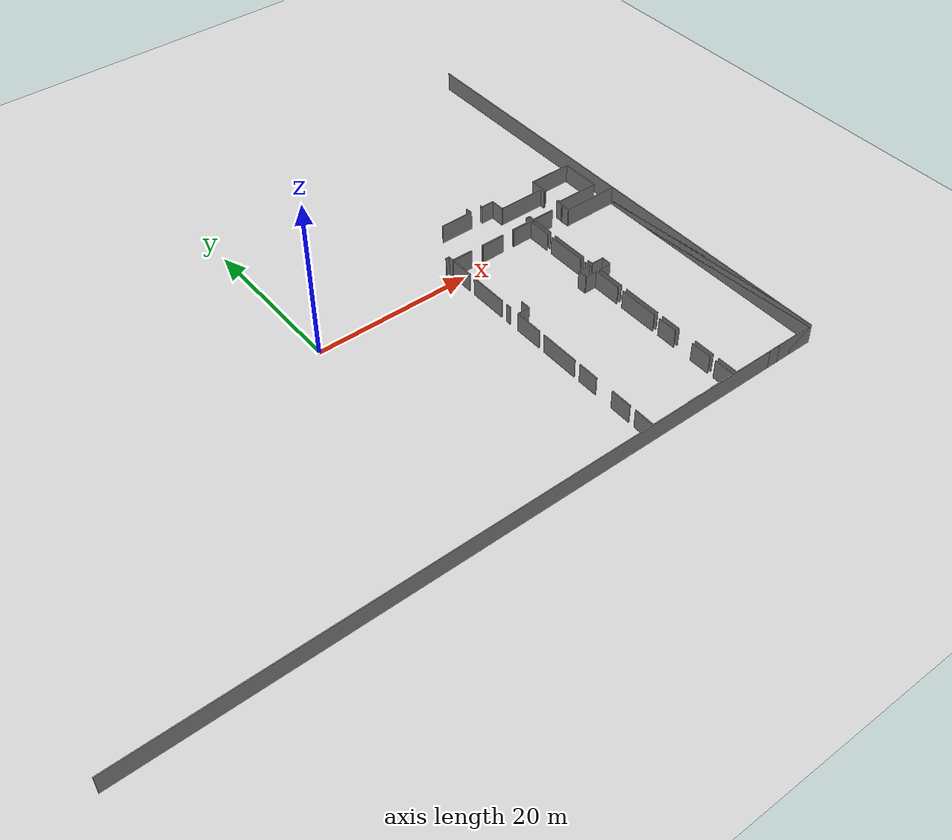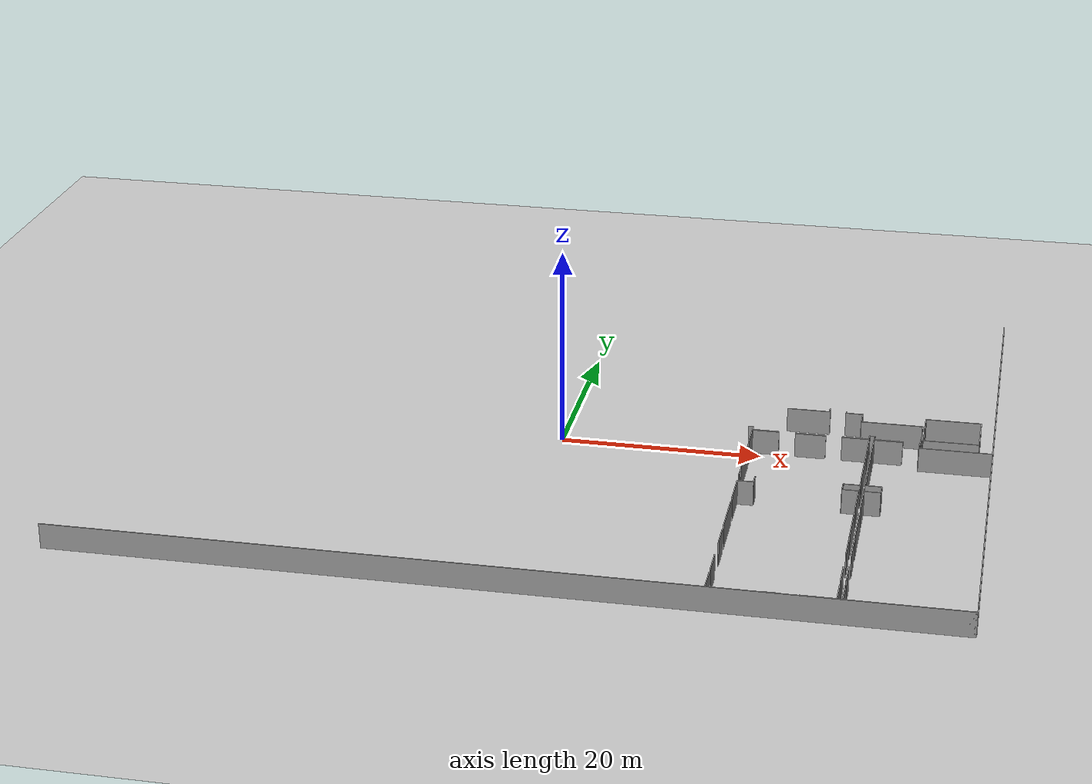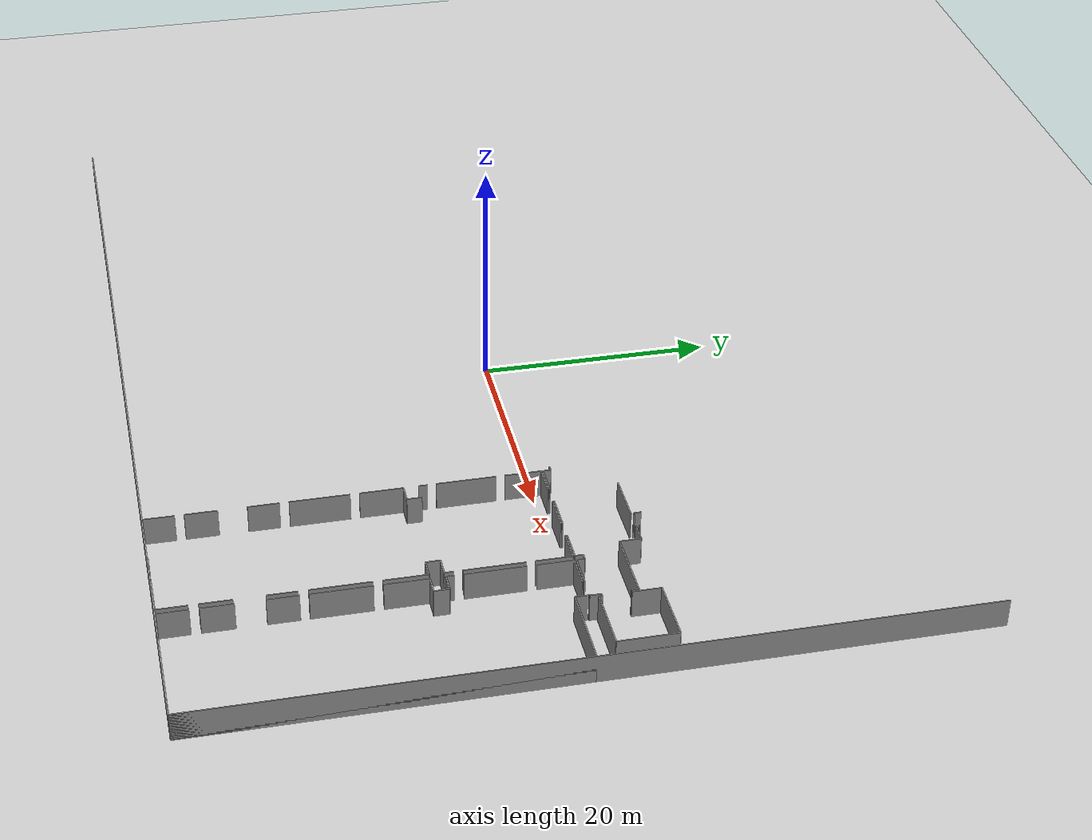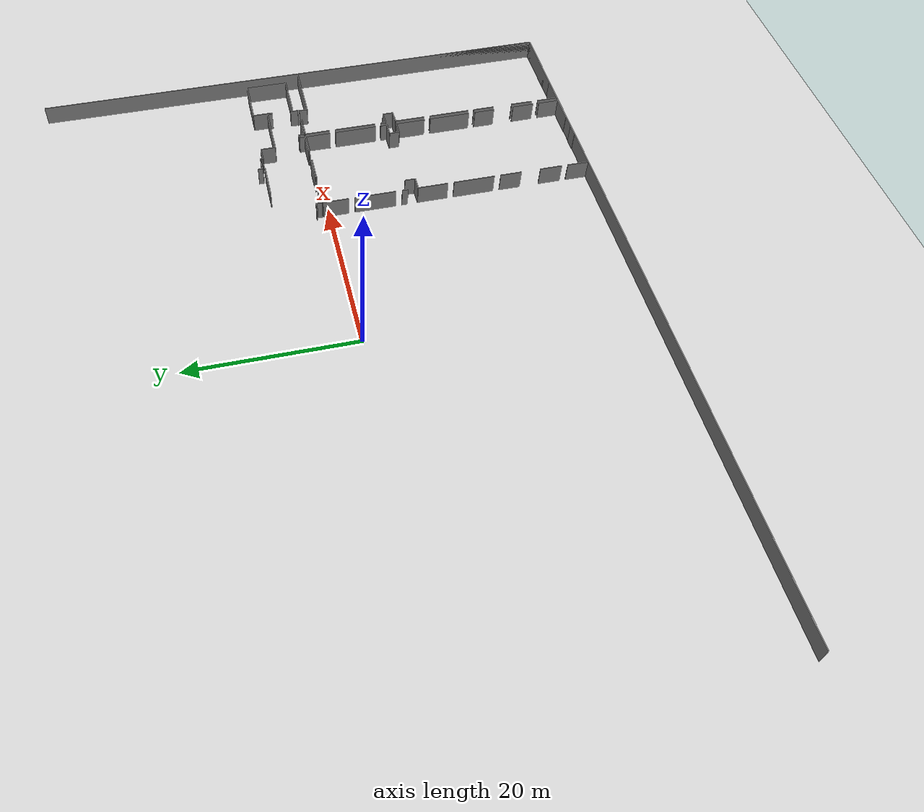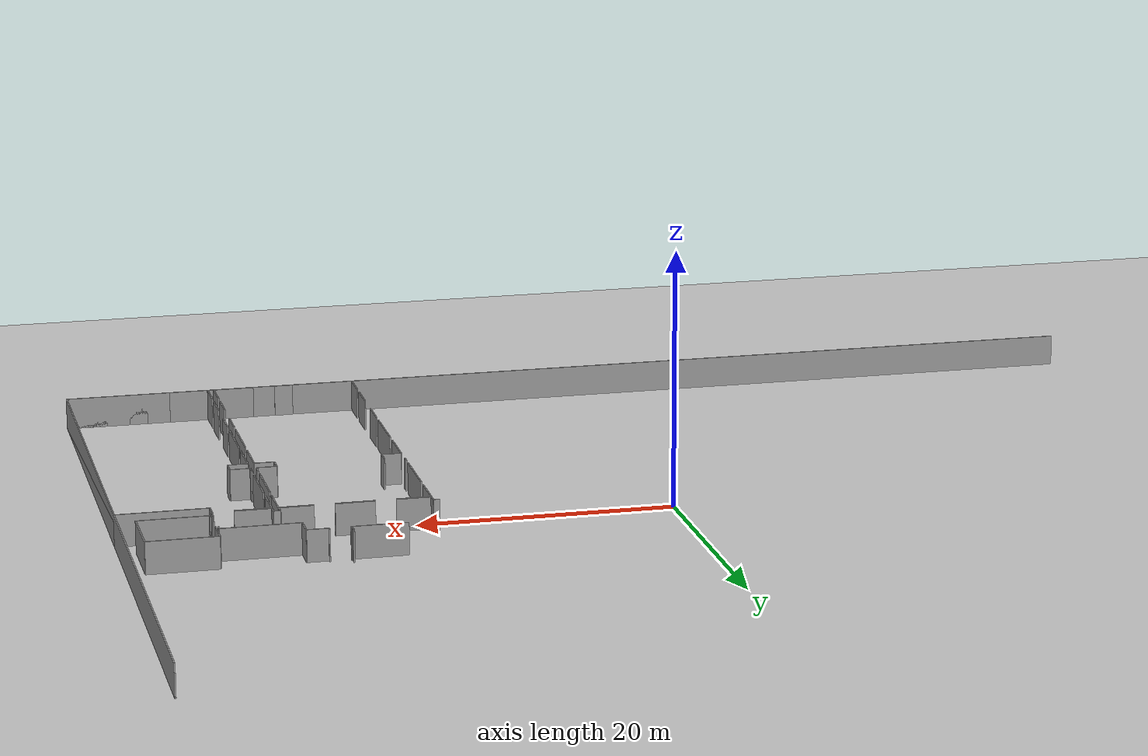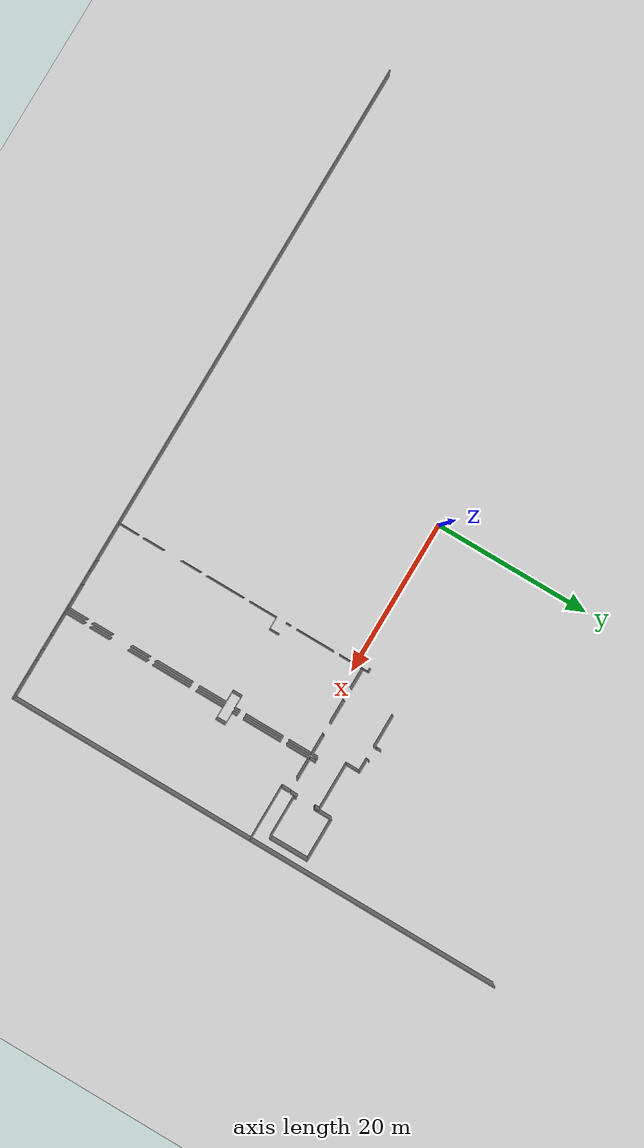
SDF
<sdf version="1.6">
 <world name="default">
  <model name="ground_plane">
   <static>1</static>
   <link name="link">
    <collision name="collision">
     <geometry><plane><normal>0 0 1</normal><size>100 100</size></plane></geometry>
     <surface><friction><ode><mu>100</mu><mu2>50</mu2></ode></friction></surface>
    </collision>
    <visual name="visual">
     <cast_shadows>0</cast_shadows>
     <geometry><plane><normal>0 0 1</normal><size>100 100</size></plane></geometry>
     <material>
      <script><uri>file://media/materials/scripts/gazebo.material</uri><name>Gazebo/Grey</name></script>
     </material>
    </visual>
   </link>
  </model>
  <model name="50052750">
   <static>1</static>
   <link name="Wall_202">
    <collision name="Wall_202_Collision">
     <geometry><box><size>0.096143954298 0.1 2.5</size></box></geometry>
     <pose>0.048071977149 0 1.25 0 0 0</pose>
    </collision>
    <visual name="Wall_202_Visual">
     <pose>0.048071977149 0 1.25 0 0 0</pose>
     <geometry><box><size>0.096143954298 0.1 2.5</size></box></geometry>
     <material>
      <script><uri>file://media/materials/scripts/gazebo.material</uri><name>Gazebo/Grey</name></script>
      <ambient>1 1 1 1</ambient>
     </material>
    </visual>
    <pose>70.3778825723 -25.6202682124 0 0 0 3.14159265359</pose>
   </link>
   <link name="Wall_203">
    <collision name="Wall_203_Collision">
     <geometry><box><size>0.105669445147 0.1 2.5</size></box></geometry>
     <pose>0.0528347225733 0 1.25 0 0 0</pose>
    </collision>
    <visual name="Wall_203_Visual">
     <pose>0.0528347225733 0 1.25 0 0 0</pose>
     <geometry><box><size>0.105669445147 0.1 2.5</size></box></geometry>
     <material>
      <script><uri>file://media/materials/scripts/gazebo.material</uri><name>Gazebo/Grey</name></script>
      <ambient>1 1 1 1</ambient>
     </material>
    </visual>
    <pose>68.7260354526 -25.6202682124 0 0 0 3.14159265359</pose>
   </link>
   <link name="Wall_204">
    <collision name="Wall_204_Collision">
     <geometry><box><size>0.585881190458 0.1 2.5</size></box></geometry>
     <pose>0.292940595229 0 1.25 0 0 0</pose>
    </collision>
    <visual name="Wall_204_Visual">
     <pose>0.292940595229 0 1.25 0 0 0</pose>
     <geometry><box><size>0.585881190458 0.1 2.5</size></box></geometry>
     <material>
      <script><uri>file://media/materials/scripts/gazebo.material</uri><name>Gazebo/Grey</name></script>
      <ambient>1 1 1 1</ambient>
     </material>
    </visual>
    <pose>68.6203660075 -25.6202682124 0 0 0 1.57079632679</pose>
   </link>
   <link name="Wall_240">
    <collision name="Wall_240_Collision">
     <geometry><box><size>4.31720646565 0.1 2.5</size></box></geometry>
     <pose>2.15860323282 0 1.25 0 0 0</pose>
    </collision>
    <visual name="Wall_240_Visual">
     <pose>2.15860323282 0 1.25 0 0 0</pose>
     <geometry><box><size>4.31720646565 0.1 2.5</size></box></geometry>
     <material>
      <script><uri>file://media/materials/scripts/gazebo.material</uri><name>Gazebo/Grey</name></script>
      <ambient>1 1 1 1</ambient>
     </material>
    </visual>
    <pose>64.3939692212 -25.8986665583 0 0 0 0.0</pose>
   </link>
   <link name="Wall_241">
    <collision name="Wall_241_Collision">
     <geometry><box><size>1.71128618258 0.1 2.5</size></box></geometry>
     <pose>0.855643091288 0 1.25 0 0 0</pose>
    </collision>
    <visual name="Wall_241_Visual">
     <pose>0.855643091288 0 1.25 0 0 0</pose>
     <geometry><box><size>1.71128618258 0.1 2.5</size></box></geometry>
     <material>
      <script><uri>file://media/materials/scripts/gazebo.material</uri><name>Gazebo/Grey</name></script>
      <ambient>1 1 1 1</ambient>
     </material>
    </visual>
    <pose>70.2680219112 -25.8986665583 0 0 0 0.0</pose>
   </link>
   <link name="Wall_242">
    <collision name="Wall_242_Collision">
     <geometry><box><size>1.77771060543 0.1 2.5</size></box></geometry>
     <pose>0.888855302714 0 1.25 0 0 0</pose>
    </collision>
    <visual name="Wall_242_Visual">
     <pose>0.888855302714 0 1.25 0 0 0</pose>
     <geometry><box><size>1.77771060543 0.1 2.5</size></box></geometry>
     <material>
      <script><uri>file://media/materials/scripts/gazebo.material</uri><name>Gazebo/Grey</name></script>
      <ambient>1 1 1 1</ambient>
     </material>
    </visual>
    <pose>71.9793080937 -25.8986665583 0 0 0 -1.57079632679</pose>
   </link>
   <link name="Wall_243">
    <collision name="Wall_243_Collision">
     <geometry><box><size>6.09097986819 0.1 2.5</size></box></geometry>
     <pose>3.0454899341 0 1.25 0 0 0</pose>
    </collision>
    <visual name="Wall_243_Visual">
     <pose>3.0454899341 0 1.25 0 0 0</pose>
     <geometry><box><size>6.09097986819 0.1 2.5</size></box></geometry>
     <material>
      <script><uri>file://media/materials/scripts/gazebo.material</uri><name>Gazebo/Grey</name></script>
      <ambient>1 1 1 1</ambient>
     </material>
    </visual>
    <pose>71.9793080937 -27.6763771637 0 0 0 0.0</pose>
   </link>
   <link name="Wall_244">
    <collision name="Wall_244_Collision">
     <geometry><box><size>0.594390628949 0.1 2.5</size></box></geometry>
     <pose>0.297195314475 0 1.25 0 0 0</pose>
    </collision>
    <visual name="Wall_244_Visual">
     <pose>0.297195314475 0 1.25 0 0 0</pose>
     <geometry><box><size>0.594390628949 0.1 2.5</size></box></geometry>
     <material>
      <script><uri>file://media/materials/scripts/gazebo.material</uri><name>Gazebo/Grey</name></script>
      <ambient>1 1 1 1</ambient>
     </material>
    </visual>
    <pose>78.0702879619 -27.6763771637 0 0 0 -1.57079632679</pose>
   </link>
   <link name="Wall_245">
    <collision name="Wall_245_Collision">
     <geometry><box><size>0.965884772042 0.1 2.5</size></box></geometry>
     <pose>0.482942386021 0 1.25 0 0 0</pose>
    </collision>
    <visual name="Wall_245_Visual">
     <pose>0.482942386021 0 1.25 0 0 0</pose>
     <geometry><box><size>0.965884772042 0.1 2.5</size></box></geometry>
     <material>
      <script><uri>file://media/materials/scripts/gazebo.material</uri><name>Gazebo/Grey</name></script>
      <ambient>1 1 1 1</ambient>
     </material>
    </visual>
    <pose>78.0702879619 -30.6239450519 0 0 0 -1.57079632679</pose>
   </link>
   <link name="Wall_246">
    <collision name="Wall_246_Collision">
     <geometry><box><size>0.0985570786463 0.1 2.5</size></box></geometry>
     <pose>0.0492785393231 0 1.25 0 0 0</pose>
    </collision>
    <visual name="Wall_246_Visual">
     <pose>0.0492785393231 0 1.25 0 0 0</pose>
     <geometry><box><size>0.0985570786463 0.1 2.5</size></box></geometry>
     <material>
      <script><uri>file://media/materials/scripts/gazebo.material</uri><name>Gazebo/Grey</name></script>
      <ambient>1 1 1 1</ambient>
     </material>
    </visual>
    <pose>78.0702879619 -31.5898298239 0 0 0 3.14159265359</pose>
   </link>
   <link name="Wall_247">
    <collision name="Wall_247_Collision">
     <geometry><box><size>2.83097588019 0.1 2.5</size></box></geometry>
     <pose>1.41548794009 0 1.25 0 0 0</pose>
    </collision>
    <visual name="Wall_247_Visual">
     <pose>1.41548794009 0 1.25 0 0 0</pose>
     <geometry><box><size>2.83097588019 0.1 2.5</size></box></geometry>
     <material>
      <script><uri>file://media/materials/scripts/gazebo.material</uri><name>Gazebo/Grey</name></script>
      <ambient>1 1 1 1</ambient>
     </material>
    </visual>
    <pose>76.4038350896 -31.5898298239 0 0 0 3.14159265359</pose>
   </link>
   <link name="Wall_248">
    <collision name="Wall_248_Collision">
     <geometry><box><size>0.69142362906 0.1 2.5</size></box></geometry>
     <pose>0.34571181453 0 1.25 0 0 0</pose>
    </collision>
    <visual name="Wall_248_Visual">
     <pose>0.34571181453 0 1.25 0 0 0</pose>
     <geometry><box><size>0.69142362906 0.1 2.5</size></box></geometry>
     <material>
      <script><uri>file://media/materials/scripts/gazebo.material</uri><name>Gazebo/Grey</name></script>
      <ambient>1 1 1 1</ambient>
     </material>
    </visual>
    <pose>73.5728592094 -31.5898298239 0 0 0 1.57079632679</pose>
   </link>
   <link name="Wall_249">
    <collision name="Wall_249_Collision">
     <geometry><box><size>0.50751815241 0.1 2.5</size></box></geometry>
     <pose>0.253759076205 0 1.25 0 0 0</pose>
    </collision>
    <visual name="Wall_249_Visual">
     <pose>0.253759076205 0 1.25 0 0 0</pose>
     <geometry><box><size>0.50751815241 0.1 2.5</size></box></geometry>
     <material>
      <script><uri>file://media/materials/scripts/gazebo.material</uri><name>Gazebo/Grey</name></script>
      <ambient>1 1 1 1</ambient>
     </material>
    </visual>
    <pose>73.5728592094 -30.8984061949 0 0 0 3.14159265359</pose>
   </link>
   <link name="Wall_250">
    <collision name="Wall_250_Collision">
     <geometry><box><size>0.694598792676 0.1 2.5</size></box></geometry>
     <pose>0.347299396338 0 1.25 0 0 0</pose>
    </collision>
    <visual name="Wall_250_Visual">
     <pose>0.347299396338 0 1.25 0 0 0</pose>
     <geometry><box><size>0.694598792676 0.1 2.5</size></box></geometry>
     <material>
      <script><uri>file://media/materials/scripts/gazebo.material</uri><name>Gazebo/Grey</name></script>
      <ambient>1 1 1 1</ambient>
     </material>
    </visual>
    <pose>73.065341057 -30.8984061949 0 0 0 -1.57079632679</pose>
   </link>
   <link name="Wall_251">
    <collision name="Wall_251_Collision">
     <geometry><box><size>2.63945001086 0.1 2.5</size></box></geometry>
     <pose>1.31972500543 0 1.25 0 0 0</pose>
    </collision>
    <visual name="Wall_251_Visual">
     <pose>1.31972500543 0 1.25 0 0 0</pose>
     <geometry><box><size>2.63945001086 0.1 2.5</size></box></geometry>
     <material>
      <script><uri>file://media/materials/scripts/gazebo.material</uri><name>Gazebo/Grey</name></script>
      <ambient>1 1 1 1</ambient>
     </material>
    </visual>
    <pose>73.065341057 -31.5930049875 0 0 0 3.14159265359</pose>
   </link>
   <link name="Wall_252">
    <collision name="Wall_252_Collision">
     <geometry><box><size>3.03977463959 0.1 2.5</size></box></geometry>
     <pose>1.51988731979 0 1.25 0 0 0</pose>
    </collision>
    <visual name="Wall_252_Visual">
     <pose>1.51988731979 0 1.25 0 0 0</pose>
     <geometry><box><size>3.03977463959 0.1 2.5</size></box></geometry>
     <material>
      <script><uri>file://media/materials/scripts/gazebo.material</uri><name>Gazebo/Grey</name></script>
      <ambient>1 1 1 1</ambient>
     </material>
    </visual>
    <pose>68.8463106504 -31.5930049875 0 0 0 3.14159265359</pose>
   </link>
   <link name="Wall_253">
    <collision name="Wall_253_Collision">
     <geometry><box><size>2.66307322816 0.1 2.5</size></box></geometry>
     <pose>1.33153661408 0 1.25 0 0 0</pose>
    </collision>
    <visual name="Wall_253_Visual">
     <pose>1.33153661408 0 1.25 0 0 0</pose>
     <geometry><box><size>2.66307322816 0.1 2.5</size></box></geometry>
     <material>
      <script><uri>file://media/materials/scripts/gazebo.material</uri><name>Gazebo/Grey</name></script>
      <ambient>1 1 1 1</ambient>
     </material>
    </visual>
    <pose>64.2292417328 -31.5930049875 0 0 0 3.14159265359</pose>
   </link>
   <link name="Wall_254">
    <collision name="Wall_254_Collision">
     <geometry><box><size>0.685073301827 0.1 2.5</size></box></geometry>
     <pose>0.342536650914 0 1.25 0 0 0</pose>
    </collision>
    <visual name="Wall_254_Visual">
     <pose>0.342536650914 0 1.25 0 0 0</pose>
     <geometry><box><size>0.685073301827 0.1 2.5</size></box></geometry>
     <material>
      <script><uri>file://media/materials/scripts/gazebo.material</uri><name>Gazebo/Grey</name></script>
      <ambient>1 1 1 1</ambient>
     </material>
    </visual>
    <pose>61.5661685047 -31.5930049875 0 0 0 1.57079632679</pose>
   </link>
   <link name="Wall_255">
    <collision name="Wall_255_Collision">
     <geometry><box><size>0.488721183803 0.1 2.5</size></box></geometry>
     <pose>0.244360591901 0 1.25 0 0 0</pose>
    </collision>
    <visual name="Wall_255_Visual">
     <pose>0.244360591901 0 1.25 0 0 0</pose>
     <geometry><box><size>0.488721183803 0.1 2.5</size></box></geometry>
     <material>
      <script><uri>file://media/materials/scripts/gazebo.material</uri><name>Gazebo/Grey</name></script>
      <ambient>1 1 1 1</ambient>
     </material>
    </visual>
    <pose>61.5661685047 -30.9079316857 0 0 0 3.14159265359</pose>
   </link>
   <link name="Wall_511">
    <collision name="Wall_511_Collision">
     <geometry><box><size>1.48597657237 0.1 2.5</size></box></geometry>
     <pose>0.742988286186 0 1.25 0 0 0</pose>
    </collision>
    <visual name="Wall_511_Visual">
     <pose>0.742988286186 0 1.25 0 0 0</pose>
     <geometry><box><size>1.48597657237 0.1 2.5</size></box></geometry>
     <material>
      <script><uri>file://media/materials/scripts/gazebo.material</uri><name>Gazebo/Grey</name></script>
      <ambient>1 1 1 1</ambient>
     </material>
    </visual>
    <pose>66.5514293952 -64.6136905435 0 0 0 0.0</pose>
   </link>
   <link name="Wall_512">
    <collision name="Wall_512_Collision">
     <geometry><box><size>3.25136754297 0.1 2.5</size></box></geometry>
     <pose>1.62568377148 0 1.25 0 0 0</pose>
    </collision>
    <visual name="Wall_512_Visual">
     <pose>1.62568377148 0 1.25 0 0 0</pose>
     <geometry><box><size>3.25136754297 0.1 2.5</size></box></geometry>
     <material>
      <script><uri>file://media/materials/scripts/gazebo.material</uri><name>Gazebo/Grey</name></script>
      <ambient>1 1 1 1</ambient>
     </material>
    </visual>
    <pose>69.8154975926 -64.6136905435 0 0 0 0.0</pose>
   </link>
   <link name="Wall_513">
    <collision name="Wall_513_Collision">
     <geometry><box><size>2.55727677647 0.1 2.5</size></box></geometry>
     <pose>1.27863838824 0 1.25 0 0 0</pose>
    </collision>
    <visual name="Wall_513_Visual">
     <pose>1.27863838824 0 1.25 0 0 0</pose>
     <geometry><box><size>2.55727677647 0.1 2.5</size></box></geometry>
     <material>
      <script><uri>file://media/materials/scripts/gazebo.material</uri><name>Gazebo/Grey</name></script>
      <ambient>1 1 1 1</ambient>
     </material>
    </visual>
    <pose>73.0668651356 -64.6136905435 0 0 0 1.57079632679</pose>
   </link>
   <link name="Wall_514">
    <collision name="Wall_514_Collision">
     <geometry><box><size>2.65049958024 0.1 2.5</size></box></geometry>
     <pose>1.32524979012 0 1.25 0 0 0</pose>
    </collision>
    <visual name="Wall_514_Visual">
     <pose>1.32524979012 0 1.25 0 0 0</pose>
     <geometry><box><size>2.65049958024 0.1 2.5</size></box></geometry>
     <material>
      <script><uri>file://media/materials/scripts/gazebo.material</uri><name>Gazebo/Grey</name></script>
      <ambient>1 1 1 1</ambient>
     </material>
    </visual>
    <pose>73.0668651356 -61.261225791 0 0 0 1.57079632679</pose>
   </link>
   <link name="Wall_515">
    <collision name="Wall_515_Collision">
     <geometry><box><size>2.50266396227 0.1 2.5</size></box></geometry>
     <pose>1.25133198114 0 1.25 0 0 0</pose>
    </collision>
    <visual name="Wall_515_Visual">
     <pose>1.25133198114 0 1.25 0 0 0</pose>
     <geometry><box><size>2.50266396227 0.1 2.5</size></box></geometry>
     <material>
      <script><uri>file://media/materials/scripts/gazebo.material</uri><name>Gazebo/Grey</name></script>
      <ambient>1 1 1 1</ambient>
     </material>
    </visual>
    <pose>73.0668651356 -56.0603077877 0 0 0 1.57079632679</pose>
   </link>
   <link name="Wall_516">
    <collision name="Wall_516_Collision">
     <geometry><box><size>5.03898465888 0.1 2.5</size></box></geometry>
     <pose>2.51949232944 0 1.25 0 0 0</pose>
    </collision>
    <visual name="Wall_516_Visual">
     <pose>2.51949232944 0 1.25 0 0 0</pose>
     <geometry><box><size>5.03898465888 0.1 2.5</size></box></geometry>
     <material>
      <script><uri>file://media/materials/scripts/gazebo.material</uri><name>Gazebo/Grey</name></script>
      <ambient>1 1 1 1</ambient>
     </material>
    </visual>
    <pose>73.0668651356 -52.75140628 0 0 0 1.57079632679</pose>
   </link>
   <link name="Wall_517">
    <collision name="Wall_517_Collision">
     <geometry><box><size>3.64635789682 0.1 2.5</size></box></geometry>
     <pose>1.82317894841 0 1.25 0 0 0</pose>
    </collision>
    <visual name="Wall_517_Visual">
     <pose>1.82317894841 0 1.25 0 0 0</pose>
     <geometry><box><size>3.64635789682 0.1 2.5</size></box></geometry>
     <material>
      <script><uri>file://media/materials/scripts/gazebo.material</uri><name>Gazebo/Grey</name></script>
      <ambient>1 1 1 1</ambient>
     </material>
    </visual>
    <pose>73.0668651356 -46.9229489396 0 0 0 1.57079632679</pose>
   </link>
   <link name="Wall_518">
    <collision name="Wall_518_Collision">
     <geometry><box><size>1.56218049916 0.1 2.5</size></box></geometry>
     <pose>0.781090249581 0 1.25 0 0 0</pose>
    </collision>
    <visual name="Wall_518_Visual">
     <pose>0.781090249581 0 1.25 0 0 0</pose>
     <geometry><box><size>1.56218049916 0.1 2.5</size></box></geometry>
     <material>
      <script><uri>file://media/materials/scripts/gazebo.material</uri><name>Gazebo/Grey</name></script>
      <ambient>1 1 1 1</ambient>
     </material>
    </visual>
    <pose>73.0668651356 -43.2765910427 0 0 0 3.14159265359</pose>
   </link>
   <link name="Wall_519">
    <collision name="Wall_519_Collision">
     <geometry><box><size>1.20656217415 0.1 2.5</size></box></geometry>
     <pose>0.603281087074 0 1.25 0 0 0</pose>
    </collision>
    <visual name="Wall_519_Visual">
     <pose>0.603281087074 0 1.25 0 0 0</pose>
     <geometry><box><size>1.20656217415 0.1 2.5</size></box></geometry>
     <material>
      <script><uri>file://media/materials/scripts/gazebo.material</uri><name>Gazebo/Grey</name></script>
      <ambient>1 1 1 1</ambient>
     </material>
    </visual>
    <pose>71.5046846364 -43.2765910427 0 0 0 1.57079632679</pose>
   </link>
   <link name="Wall_520">
    <collision name="Wall_520_Collision">
     <geometry><box><size>1.58758180809 0.1 2.5</size></box></geometry>
     <pose>0.793790904045 0 1.25 0 0 0</pose>
    </collision>
    <visual name="Wall_520_Visual">
     <pose>0.793790904045 0 1.25 0 0 0</pose>
     <geometry><box><size>1.58758180809 0.1 2.5</size></box></geometry>
     <material>
      <script><uri>file://media/materials/scripts/gazebo.material</uri><name>Gazebo/Grey</name></script>
      <ambient>1 1 1 1</ambient>
     </material>
    </visual>
    <pose>71.5046846364 -42.0700288686 0 0 0 0.0</pose>
   </link>
   <link name="Wall_521">
    <collision name="Wall_521_Collision">
     <geometry><box><size>0.762039267883 0.1 2.5</size></box></geometry>
     <pose>0.381019633942 0 1.25 0 0 0</pose>
    </collision>
    <visual name="Wall_521_Visual">
     <pose>0.381019633942 0 1.25 0 0 0</pose>
     <geometry><box><size>0.762039267883 0.1 2.5</size></box></geometry>
     <material>
      <script><uri>file://media/materials/scripts/gazebo.material</uri><name>Gazebo/Grey</name></script>
      <ambient>1 1 1 1</ambient>
     </material>
    </visual>
    <pose>73.0922664445 -42.0700288686 0 0 0 1.57079632679</pose>
   </link>
   <link name="Wall_522">
    <collision name="Wall_522_Collision">
     <geometry><box><size>5.06857718378 0.1 2.5</size></box></geometry>
     <pose>2.53428859189 0 1.25 0 0 0</pose>
    </collision>
    <visual name="Wall_522_Visual">
     <pose>2.53428859189 0 1.25 0 0 0</pose>
     <geometry><box><size>5.06857718378 0.1 2.5</size></box></geometry>
     <material>
      <script><uri>file://media/materials/scripts/gazebo.material</uri><name>Gazebo/Grey</name></script>
      <ambient>1 1 1 1</ambient>
     </material>
    </visual>
    <pose>73.0922664445 -40.5869734467 0 0 0 1.57079632679</pose>
   </link>
   <link name="Wall_523">
    <collision name="Wall_523_Collision">
     <geometry><box><size>3.0571745362 0.1 2.5</size></box></geometry>
     <pose>1.5285872681 0 1.25 0 0 0</pose>
    </collision>
    <visual name="Wall_523_Visual">
     <pose>1.5285872681 0 1.25 0 0 0</pose>
     <geometry><box><size>3.0571745362 0.1 2.5</size></box></geometry>
     <material>
      <script><uri>file://media/materials/scripts/gazebo.material</uri><name>Gazebo/Grey</name></script>
      <ambient>1 1 1 1</ambient>
     </material>
    </visual>
    <pose>73.0922664445 -34.7776940946 0 0 0 1.57079632679</pose>
   </link>
   <link name="Wall_524">
    <collision name="Wall_524_Collision">
     <geometry><box><size>2.67463082373 0.1 2.5</size></box></geometry>
     <pose>1.33731541186 0 1.25 0 0 0</pose>
    </collision>
    <visual name="Wall_524_Visual">
     <pose>1.33731541186 0 1.25 0 0 0</pose>
     <geometry><box><size>2.67463082373 0.1 2.5</size></box></geometry>
     <material>
      <script><uri>file://media/materials/scripts/gazebo.material</uri><name>Gazebo/Grey</name></script>
      <ambient>1 1 1 1</ambient>
     </material>
    </visual>
    <pose>73.0922664445 -31.7205195584 0 0 0 3.14159265359</pose>
   </link>
   <link name="Wall_525">
    <collision name="Wall_525_Collision">
     <geometry><box><size>3.04485490137 0.1 2.5</size></box></geometry>
     <pose>1.52242745069 0 1.25 0 0 0</pose>
    </collision>
    <visual name="Wall_525_Visual">
     <pose>1.52242745069 0 1.25 0 0 0</pose>
     <geometry><box><size>3.04485490137 0.1 2.5</size></box></geometry>
     <material>
      <script><uri>file://media/materials/scripts/gazebo.material</uri><name>Gazebo/Grey</name></script>
      <ambient>1 1 1 1</ambient>
     </material>
    </visual>
    <pose>68.8513909122 -31.7205195584 0 0 0 3.14159265359</pose>
   </link>
   <link name="Wall_526">
    <collision name="Wall_526_Collision">
     <geometry><box><size>2.65951704491 0.1 2.5</size></box></geometry>
     <pose>1.32975852246 0 1.25 0 0 0</pose>
    </collision>
    <visual name="Wall_526_Visual">
     <pose>1.32975852246 0 1.25 0 0 0</pose>
     <geometry><box><size>2.65951704491 0.1 2.5</size></box></geometry>
     <material>
      <script><uri>file://media/materials/scripts/gazebo.material</uri><name>Gazebo/Grey</name></script>
      <ambient>1 1 1 1</ambient>
     </material>
    </visual>
    <pose>64.2134929213 -31.7205195584 0 0 0 3.14159265359</pose>
   </link>
   <link name="Wall_527">
    <collision name="Wall_527_Collision">
     <geometry><box><size>3.06149275872 0.1 2.5</size></box></geometry>
     <pose>1.53074637936 0 1.25 0 0 0</pose>
    </collision>
    <visual name="Wall_527_Visual">
     <pose>1.53074637936 0 1.25 0 0 0</pose>
     <geometry><box><size>3.06149275872 0.1 2.5</size></box></geometry>
     <material>
      <script><uri>file://media/materials/scripts/gazebo.material</uri><name>Gazebo/Grey</name></script>
      <ambient>1 1 1 1</ambient>
     </material>
    </visual>
    <pose>61.5539758764 -31.7205195584 0 0 0 -1.57079632679</pose>
   </link>
   <link name="Wall_528">
    <collision name="Wall_528_Collision">
     <geometry><box><size>5.00342282638 0.1 2.5</size></box></geometry>
     <pose>2.50171141319 0 1.25 0 0 0</pose>
    </collision>
    <visual name="Wall_528_Visual">
     <pose>2.50171141319 0 1.25 0 0 0</pose>
     <geometry><box><size>5.00342282638 0.1 2.5</size></box></geometry>
     <material>
      <script><uri>file://media/materials/scripts/gazebo.material</uri><name>Gazebo/Grey</name></script>
      <ambient>1 1 1 1</ambient>
     </material>
    </visual>
    <pose>61.5539758764 -35.5598003965 0 0 0 -1.57079632679</pose>
   </link>
   <link name="Wall_529">
    <collision name="Wall_529_Collision">
     <geometry><box><size>0.710601617301 0.1 2.5</size></box></geometry>
     <pose>0.355300808651 0 1.25 0 0 0</pose>
    </collision>
    <visual name="Wall_529_Visual">
     <pose>0.355300808651 0 1.25 0 0 0</pose>
     <geometry><box><size>0.710601617301 0.1 2.5</size></box></geometry>
     <material>
      <script><uri>file://media/materials/scripts/gazebo.material</uri><name>Gazebo/Grey</name></script>
      <ambient>1 1 1 1</ambient>
     </material>
    </visual>
    <pose>61.5539758764 -41.3219603206 0 0 0 -1.57079632679</pose>
   </link>
   <link name="Wall_531">
    <collision name="Wall_531_Collision">
     <geometry><box><size>1.25812683128 0.1 2.5</size></box></geometry>
     <pose>0.629063415638 0 1.25 0 0 0</pose>
    </collision>
    <visual name="Wall_531_Visual">
     <pose>0.629063415638 0 1.25 0 0 0</pose>
     <geometry><box><size>1.25812683128 0.1 2.5</size></box></geometry>
     <material>
      <script><uri>file://media/materials/scripts/gazebo.material</uri><name>Gazebo/Grey</name></script>
      <ambient>1 1 1 1</ambient>
     </material>
    </visual>
    <pose>63.1272059449 -42.0325619379 0 0 0 -1.57079632679</pose>
   </link>
   <link name="Wall_532">
    <collision name="Wall_532_Collision">
     <geometry><box><size>1.55583017193 0.1 2.5</size></box></geometry>
     <pose>0.777915085964 0 1.25 0 0 0</pose>
    </collision>
    <visual name="Wall_532_Visual">
     <pose>0.777915085964 0 1.25 0 0 0</pose>
     <geometry><box><size>1.55583017193 0.1 2.5</size></box></geometry>
     <material>
      <script><uri>file://media/materials/scripts/gazebo.material</uri><name>Gazebo/Grey</name></script>
      <ambient>1 1 1 1</ambient>
     </material>
    </visual>
    <pose>63.1272059449 -43.2906887692 0 0 0 3.14159265359</pose>
   </link>
   <link name="Wall_533">
    <collision name="Wall_533_Collision">
     <geometry><box><size>3.66540887852 0.1 2.5</size></box></geometry>
     <pose>1.83270443926 0 1.25 0 0 0</pose>
    </collision>
    <visual name="Wall_533_Visual">
     <pose>1.83270443926 0 1.25 0 0 0</pose>
     <geometry><box><size>3.66540887852 0.1 2.5</size></box></geometry>
     <material>
      <script><uri>file://media/materials/scripts/gazebo.material</uri><name>Gazebo/Grey</name></script>
      <ambient>1 1 1 1</ambient>
     </material>
    </visual>
    <pose>61.571375773 -43.2906887692 0 0 0 -1.57079632679</pose>
   </link>
   <link name="Wall_534">
    <collision name="Wall_534_Collision">
     <geometry><box><size>5.02488693242 0.1 2.5</size></box></geometry>
     <pose>2.51244346621 0 1.25 0 0 0</pose>
    </collision>
    <visual name="Wall_534_Visual">
     <pose>2.51244346621 0 1.25 0 0 0</pose>
     <geometry><box><size>5.02488693242 0.1 2.5</size></box></geometry>
     <material>
      <script><uri>file://media/materials/scripts/gazebo.material</uri><name>Gazebo/Grey</name></script>
      <ambient>1 1 1 1</ambient>
     </material>
    </visual>
    <pose>61.571375773 -47.7201690203 0 0 0 -1.57079632679</pose>
   </link>
   <link name="Wall_535">
    <collision name="Wall_535_Collision">
     <geometry><box><size>2.61404870193 0.1 2.5</size></box></geometry>
     <pose>1.30702435096 0 1.25 0 0 0</pose>
    </collision>
    <visual name="Wall_535_Visual">
     <pose>1.30702435096 0 1.25 0 0 0</pose>
     <geometry><box><size>2.61404870193 0.1 2.5</size></box></geometry>
     <material>
      <script><uri>file://media/materials/scripts/gazebo.material</uri><name>Gazebo/Grey</name></script>
      <ambient>1 1 1 1</ambient>
     </material>
    </visual>
    <pose>61.571375773 -53.5357986997 0 0 0 -1.57079632679</pose>
   </link>
   <link name="Wall_536">
    <collision name="Wall_536_Collision">
     <geometry><box><size>2.72784656593 0.1 2.5</size></box></geometry>
     <pose>1.36392328297 0 1.25 0 0 0</pose>
    </collision>
    <visual name="Wall_536_Visual">
     <pose>1.36392328297 0 1.25 0 0 0</pose>
     <geometry><box><size>2.72784656593 0.1 2.5</size></box></geometry>
     <material>
      <script><uri>file://media/materials/scripts/gazebo.material</uri><name>Gazebo/Grey</name></script>
      <ambient>1 1 1 1</ambient>
     </material>
    </visual>
    <pose>61.571375773 -58.5444287944 0 0 0 -1.57079632679</pose>
   </link>
   <link name="Wall_537">
    <collision name="Wall_537_Collision">
     <geometry><box><size>2.57948760716 0.1 2.5</size></box></geometry>
     <pose>1.28974380358 0 1.25 0 0 0</pose>
    </collision>
    <visual name="Wall_537_Visual">
     <pose>1.28974380358 0 1.25 0 0 0</pose>
     <geometry><box><size>2.57948760716 0.1 2.5</size></box></geometry>
     <material>
      <script><uri>file://media/materials/scripts/gazebo.material</uri><name>Gazebo/Grey</name></script>
      <ambient>1 1 1 1</ambient>
     </material>
    </visual>
    <pose>61.571375773 -62.0343146282 0 0 0 -1.58010227707</pose>
   </link>
   <link name="Wall_538">
    <collision name="Wall_538_Collision">
     <geometry><box><size>2.60363416527 0.1 2.5</size></box></geometry>
     <pose>1.30181708263 0 1.25 0 0 0</pose>
    </collision>
    <visual name="Wall_538_Visual">
     <pose>1.30181708263 0 1.25 0 0 0</pose>
     <geometry><box><size>2.60363416527 0.1 2.5</size></box></geometry>
     <material>
      <script><uri>file://media/materials/scripts/gazebo.material</uri><name>Gazebo/Grey</name></script>
      <ambient>1 1 1 1</ambient>
     </material>
    </visual>
    <pose>73.5621906597 -64.6390918524 0 0 0 1.57079632679</pose>
   </link>
   <link name="Wall_539">
    <collision name="Wall_539_Collision">
     <geometry><box><size>2.6990160803 0.1 2.5</size></box></geometry>
     <pose>1.34950804015 0 1.25 0 0 0</pose>
    </collision>
    <visual name="Wall_539_Visual">
     <pose>1.34950804015 0 1.25 0 0 0</pose>
     <geometry><box><size>2.6990160803 0.1 2.5</size></box></geometry>
     <material>
      <script><uri>file://media/materials/scripts/gazebo.material</uri><name>Gazebo/Grey</name></script>
      <ambient>1 1 1 1</ambient>
     </material>
    </visual>
    <pose>73.5621906597 -61.2480171103 0 0 0 1.57079632679</pose>
   </link>
   <link name="Wall_540">
    <collision name="Wall_540_Collision">
     <geometry><box><size>2.60642830925 0.1 2.5</size></box></geometry>
     <pose>1.30321415463 0 1.25 0 0 0</pose>
    </collision>
    <visual name="Wall_540_Visual">
     <pose>1.30321415463 0 1.25 0 0 0</pose>
     <geometry><box><size>2.60642830925 0.1 2.5</size></box></geometry>
     <material>
      <script><uri>file://media/materials/scripts/gazebo.material</uri><name>Gazebo/Grey</name></script>
      <ambient>1 1 1 1</ambient>
     </material>
    </visual>
    <pose>73.5621906597 -56.1258431647 0 0 0 1.57079632679</pose>
   </link>
   <link name="Wall_541">
    <collision name="Wall_541_Collision">
     <geometry><box><size>5.03657153453 0.1 2.5</size></box></geometry>
     <pose>2.51828576727 0 1.25 0 0 0</pose>
    </collision>
    <visual name="Wall_541_Visual">
     <pose>2.51828576727 0 1.25 0 0 0</pose>
     <geometry><box><size>5.03657153453 0.1 2.5</size></box></geometry>
     <material>
      <script><uri>file://media/materials/scripts/gazebo.material</uri><name>Gazebo/Grey</name></script>
      <ambient>1 1 1 1</ambient>
     </material>
    </visual>
    <pose>73.5621906597 -52.7794747263 0 0 0 1.57079632679</pose>
   </link>
   <link name="Wall_542">
    <collision name="Wall_542_Collision">
     <geometry><box><size>3.66604391124 0.1 2.5</size></box></geometry>
     <pose>1.83302195562 0 1.25 0 0 0</pose>
    </collision>
    <visual name="Wall_542_Visual">
     <pose>1.83302195562 0 1.25 0 0 0</pose>
     <geometry><box><size>3.66604391124 0.1 2.5</size></box></geometry>
     <material>
      <script><uri>file://media/materials/scripts/gazebo.material</uri><name>Gazebo/Grey</name></script>
      <ambient>1 1 1 1</ambient>
     </material>
    </visual>
    <pose>73.5621906597 -46.9580027459 0 0 0 1.57079632679</pose>
   </link>
   <link name="Wall_543">
    <collision name="Wall_543_Collision">
     <geometry><box><size>1.58059644813 0.1 2.5</size></box></geometry>
     <pose>0.790298224067 0 1.25 0 0 0</pose>
    </collision>
    <visual name="Wall_543_Visual">
     <pose>0.790298224067 0 1.25 0 0 0</pose>
     <geometry><box><size>1.58059644813 0.1 2.5</size></box></geometry>
     <material>
      <script><uri>file://media/materials/scripts/gazebo.material</uri><name>Gazebo/Grey</name></script>
      <ambient>1 1 1 1</ambient>
     </material>
    </visual>
    <pose>73.5621906597 -43.2919588346 0 0 0 0.0</pose>
   </link>
   <link name="Wall_544">
    <collision name="Wall_544_Collision">
     <geometry><box><size>1.2693034072 0.1 2.5</size></box></geometry>
     <pose>0.634651703602 0 1.25 0 0 0</pose>
    </collision>
    <visual name="Wall_544_Visual">
     <pose>0.634651703602 0 1.25 0 0 0</pose>
     <geometry><box><size>1.2693034072 0.1 2.5</size></box></geometry>
     <material>
      <script><uri>file://media/materials/scripts/gazebo.material</uri><name>Gazebo/Grey</name></script>
      <ambient>1 1 1 1</ambient>
     </material>
    </visual>
    <pose>75.1427871078 -43.2919588346 0 0 0 1.57079632679</pose>
   </link>
   <link name="Wall_545">
    <collision name="Wall_545_Collision">
     <geometry><box><size>1.57831033033 0.1 2.5</size></box></geometry>
     <pose>0.789155165166 0 1.25 0 0 0</pose>
    </collision>
    <visual name="Wall_545_Visual">
     <pose>0.789155165166 0 1.25 0 0 0</pose>
     <geometry><box><size>1.57831033033 0.1 2.5</size></box></geometry>
     <material>
      <script><uri>file://media/materials/scripts/gazebo.material</uri><name>Gazebo/Grey</name></script>
      <ambient>1 1 1 1</ambient>
     </material>
    </visual>
    <pose>75.1427871078 -42.0226554274 0 0 0 3.14159265359</pose>
   </link>
   <link name="Wall_546">
    <collision name="Wall_546_Collision">
     <geometry><box><size>0.676563863336 0.1 2.5</size></box></geometry>
     <pose>0.338281931668 0 1.25 0 0 0</pose>
    </collision>
    <visual name="Wall_546_Visual">
     <pose>0.338281931668 0 1.25 0 0 0</pose>
     <geometry><box><size>0.676563863336 0.1 2.5</size></box></geometry>
     <material>
      <script><uri>file://media/materials/scripts/gazebo.material</uri><name>Gazebo/Grey</name></script>
      <ambient>1 1 1 1</ambient>
     </material>
    </visual>
    <pose>73.5644767775 -42.0226554274 0 0 0 1.57079632679</pose>
   </link>
   <link name="Wall_547">
    <collision name="Wall_547_Collision">
     <geometry><box><size>5.0515583068 0.1 2.5</size></box></geometry>
     <pose>2.5257791534 0 1.25 0 0 0</pose>
    </collision>
    <visual name="Wall_547_Visual">
     <pose>2.5257791534 0 1.25 0 0 0</pose>
     <geometry><box><size>5.0515583068 0.1 2.5</size></box></geometry>
     <material>
      <script><uri>file://media/materials/scripts/gazebo.material</uri><name>Gazebo/Grey</name></script>
      <ambient>1 1 1 1</ambient>
     </material>
    </visual>
    <pose>73.5644767775 -40.5827822308 0 0 0 1.57079632679</pose>
   </link>
   <link name="Wall_548">
    <collision name="Wall_548_Collision">
     <geometry><box><size>3.02212072988 0.1 2.5</size></box></geometry>
     <pose>1.51106036494 0 1.25 0 0 0</pose>
    </collision>
    <visual name="Wall_548_Visual">
     <pose>1.51106036494 0 1.25 0 0 0</pose>
     <geometry><box><size>3.02212072988 0.1 2.5</size></box></geometry>
     <material>
      <script><uri>file://media/materials/scripts/gazebo.material</uri><name>Gazebo/Grey</name></script>
      <ambient>1 1 1 1</ambient>
     </material>
    </visual>
    <pose>73.5644767775 -34.7625803158 0 0 0 1.57079632679</pose>
   </link>
   <link name="Wall_549">
    <collision name="Wall_549_Collision">
     <geometry><box><size>2.80417749927 0.1 2.5</size></box></geometry>
     <pose>1.40208874963 0 1.25 0 0 0</pose>
    </collision>
    <visual name="Wall_549_Visual">
     <pose>1.40208874963 0 1.25 0 0 0</pose>
     <geometry><box><size>2.80417749927 0.1 2.5</size></box></geometry>
     <material>
      <script><uri>file://media/materials/scripts/gazebo.material</uri><name>Gazebo/Grey</name></script>
      <ambient>1 1 1 1</ambient>
     </material>
    </visual>
    <pose>73.5644767775 -31.7404595859 0 0 0 0.0</pose>
   </link>
   <link name="Wall_550">
    <collision name="Wall_550_Collision">
     <geometry><box><size>1.01262318047 0.1 2.5</size></box></geometry>
     <pose>0.506311590236 0 1.25 0 0 0</pose>
    </collision>
    <visual name="Wall_550_Visual">
     <pose>0.506311590236 0 1.25 0 0 0</pose>
     <geometry><box><size>1.01262318047 0.1 2.5</size></box></geometry>
     <material>
      <script><uri>file://media/materials/scripts/gazebo.material</uri><name>Gazebo/Grey</name></script>
      <ambient>1 1 1 1</ambient>
     </material>
    </visual>
    <pose>78.0179612655 -31.7404595859 0 0 0 -1.57079632679</pose>
   </link>
   <link name="Wall_551">
    <collision name="Wall_551_Collision">
     <geometry><box><size>7.10182495704 0.1 2.5</size></box></geometry>
     <pose>3.55091247852 0 1.25 0 0 0</pose>
    </collision>
    <visual name="Wall_551_Visual">
     <pose>3.55091247852 0 1.25 0 0 0</pose>
     <geometry><box><size>7.10182495704 0.1 2.5</size></box></geometry>
     <material>
      <script><uri>file://media/materials/scripts/gazebo.material</uri><name>Gazebo/Grey</name></script>
      <ambient>1 1 1 1</ambient>
     </material>
    </visual>
    <pose>78.0179612655 -32.7530827664 0 0 0 0.0</pose>
   </link>
   <link name="Wall_552">
    <collision name="Wall_552_Collision">
     <geometry><box><size>31.9070921725 0.1 2.5</size></box></geometry>
     <pose>15.9535460862 0 1.25 0 0 0</pose>
    </collision>
    <visual name="Wall_552_Visual">
     <pose>15.9535460862 0 1.25 0 0 0</pose>
     <geometry><box><size>31.9070921725 0.1 2.5</size></box></geometry>
     <material>
      <script><uri>file://media/materials/scripts/gazebo.material</uri><name>Gazebo/Grey</name></script>
      <ambient>1 1 1 1</ambient>
     </material>
    </visual>
    <pose>85.1197862226 -32.7530827664 0 0 0 -1.57079632679</pose>
   </link>
   <link name="Wall_553">
    <collision name="Wall_553_Collision">
     <geometry><box><size>3.2210129788 0.1 2.5</size></box></geometry>
     <pose>1.6105064894 0 1.25 0 0 0</pose>
    </collision>
    <visual name="Wall_553_Visual">
     <pose>1.6105064894 0 1.25 0 0 0</pose>
     <geometry><box><size>3.2210129788 0.1 2.5</size></box></geometry>
     <material>
      <script><uri>file://media/materials/scripts/gazebo.material</uri><name>Gazebo/Grey</name></script>
      <ambient>1 1 1 1</ambient>
     </material>
    </visual>
    <pose>85.1197862226 -64.6601749388 0 0 0 3.14159265359</pose>
   </link>
   <link name="Wall_554">
    <collision name="Wall_554_Collision">
     <geometry><box><size>1.4781021666 0.1 2.5</size></box></geometry>
     <pose>0.739051083302 0 1.25 0 0 0</pose>
    </collision>
    <visual name="Wall_554_Visual">
     <pose>0.739051083302 0 1.25 0 0 0</pose>
     <geometry><box><size>1.4781021666 0.1 2.5</size></box></geometry>
     <material>
      <script><uri>file://media/materials/scripts/gazebo.material</uri><name>Gazebo/Grey</name></script>
      <ambient>1 1 1 1</ambient>
     </material>
    </visual>
    <pose>80.0512090388 -64.6601749388 0 0 0 3.14159265359</pose>
   </link>
   <link name="Wall_555">
    <collision name="Wall_555_Collision">
     <geometry><box><size>3.16329526023 0.1 2.5</size></box></geometry>
     <pose>1.58164763011 0 1.25 0 0 0</pose>
    </collision>
    <visual name="Wall_555_Visual">
     <pose>1.58164763011 0 1.25 0 0 0</pose>
     <geometry><box><size>3.16329526023 0.1 2.5</size></box></geometry>
     <material>
      <script><uri>file://media/materials/scripts/gazebo.material</uri><name>Gazebo/Grey</name></script>
      <ambient>1 1 1 1</ambient>
     </material>
    </visual>
    <pose>76.7254156607 -64.6601749388 0 0 0 3.13492769165</pose>
   </link>
   <link name="Wall_556">
    <collision name="Wall_556_Collision">
     <geometry><box><size>5.4358801109 0.1 2.5</size></box></geometry>
     <pose>2.71794005545 0 1.25 0 0 0</pose>
    </collision>
    <visual name="Wall_556_Visual">
     <pose>2.71794005545 0 1.25 0 0 0</pose>
     <geometry><box><size>5.4358801109 0.1 2.5</size></box></geometry>
     <material>
      <script><uri>file://media/materials/scripts/gazebo.material</uri><name>Gazebo/Grey</name></script>
      <ambient>1 1 1 1</ambient>
     </material>
    </visual>
    <pose>78.3122354295 -30.9188542486 0 0 0 0.0</pose>
   </link>
   <link name="Wall_557">
    <collision name="Wall_557_Collision">
     <geometry><box><size>5.02945916803 0.1 2.5</size></box></geometry>
     <pose>2.51472958402 0 1.25 0 0 0</pose>
    </collision>
    <visual name="Wall_557_Visual">
     <pose>2.51472958402 0 1.25 0 0 0</pose>
     <geometry><box><size>5.02945916803 0.1 2.5</size></box></geometry>
     <material>
      <script><uri>file://media/materials/scripts/gazebo.material</uri><name>Gazebo/Grey</name></script>
      <ambient>1 1 1 1</ambient>
     </material>
    </visual>
    <pose>83.7481155404 -30.9188542486 0 0 0 1.57079632679</pose>
   </link>
   <link name="Wall_558">
    <collision name="Wall_558_Collision">
     <geometry><box><size>5.46661569471 0.1 2.5</size></box></geometry>
     <pose>2.73330784735 0 1.25 0 0 0</pose>
    </collision>
    <visual name="Wall_558_Visual">
     <pose>2.73330784735 0 1.25 0 0 0</pose>
     <geometry><box><size>5.46661569471 0.1 2.5</size></box></geometry>
     <material>
      <script><uri>file://media/materials/scripts/gazebo.material</uri><name>Gazebo/Grey</name></script>
      <ambient>1 1 1 1</ambient>
     </material>
    </visual>
    <pose>83.7481155404 -25.8893950805 0 0 0 3.14159265359</pose>
   </link>
   <link name="Wall_559">
    <collision name="Wall_559_Collision">
     <geometry><box><size>2.37934060742 0.1 2.5</size></box></geometry>
     <pose>1.18967030371 0 1.25 0 0 0</pose>
    </collision>
    <visual name="Wall_559_Visual">
     <pose>1.18967030371 0 1.25 0 0 0</pose>
     <geometry><box><size>2.37934060742 0.1 2.5</size></box></geometry>
     <material>
      <script><uri>file://media/materials/scripts/gazebo.material</uri><name>Gazebo/Grey</name></script>
      <ambient>1 1 1 1</ambient>
     </material>
    </visual>
    <pose>78.2814998457 -25.8893950805 0 0 0 -1.57079632679</pose>
   </link>
   <link name="Wall_560">
    <collision name="Wall_560_Collision">
     <geometry><box><size>0.315966656125 0.1 2.5</size></box></geometry>
     <pose>0.157983328062 0 1.25 0 0 0</pose>
    </collision>
    <visual name="Wall_560_Visual">
     <pose>0.157983328062 0 1.25 0 0 0</pose>
     <geometry><box><size>0.315966656125 0.1 2.5</size></box></geometry>
     <material>
      <script><uri>file://media/materials/scripts/gazebo.material</uri><name>Gazebo/Grey</name></script>
      <ambient>1 1 1 1</ambient>
     </material>
    </visual>
    <pose>78.2814998457 -30.604386044 0 0 0 -1.47336749137</pose>
   </link>
   <link name="Wall_561">
    <collision name="Wall_561_Collision">
     <geometry><box><size>64.6601749388 0.1 2.5</size></box></geometry>
     <pose>32.3300874694 0 1.25 0 0 0</pose>
    </collision>
    <visual name="Wall_561_Visual">
     <pose>32.3300874694 0 1.25 0 0 0</pose>
     <geometry><box><size>64.6601749388 0.1 2.5</size></box></geometry>
     <material>
      <script><uri>file://media/materials/scripts/gazebo.material</uri><name>Gazebo/Grey</name></script>
      <ambient>1 1 1 1</ambient>
     </material>
    </visual>
    <pose>85.1197862226 -64.6601749388 0 0 0 1.57079632679</pose>
   </link>
   <link name="Wall_562">
    <collision name="Wall_562_Collision">
     <geometry><box><size>85.1197862226 0.1 2.5</size></box></geometry>
     <pose>42.5598931113 0 1.25 0 0 0</pose>
    </collision>
    <visual name="Wall_562_Visual">
     <pose>42.5598931113 0 1.25 0 0 0</pose>
     <geometry><box><size>85.1197862226 0.1 2.5</size></box></geometry>
     <material>
      <script><uri>file://media/materials/scripts/gazebo.material</uri><name>Gazebo/Grey</name></script>
      <ambient>1 1 1 1</ambient>
     </material>
    </visual>
    <pose>85.1197862226 -64.6601749388 0 0 0 3.14159265359</pose>
   </link>
   <pose>-42.55 32.5101749388 0 0 0 0</pose>
  </model>
 </world>
</sdf>
